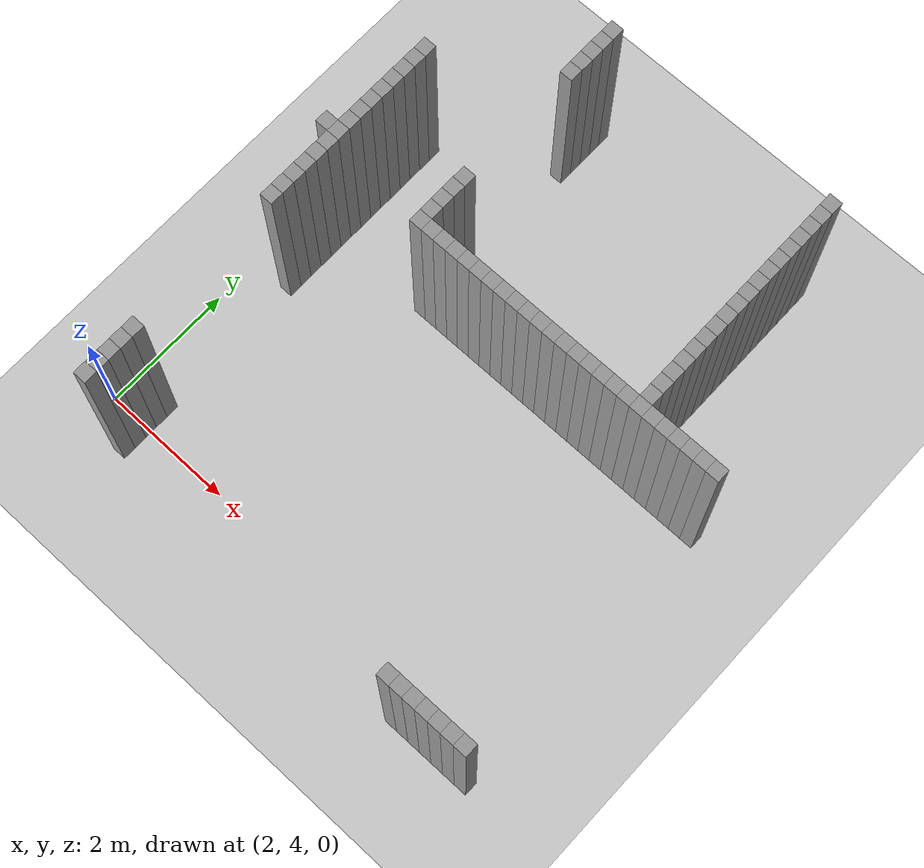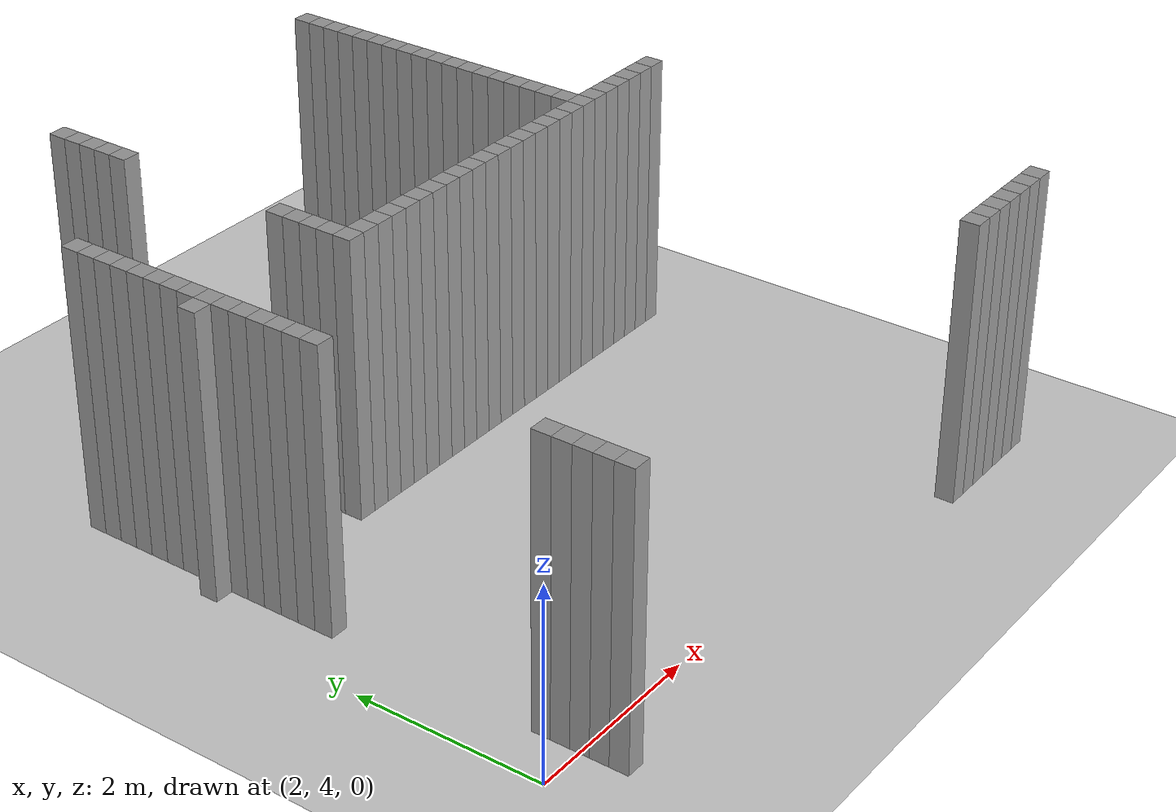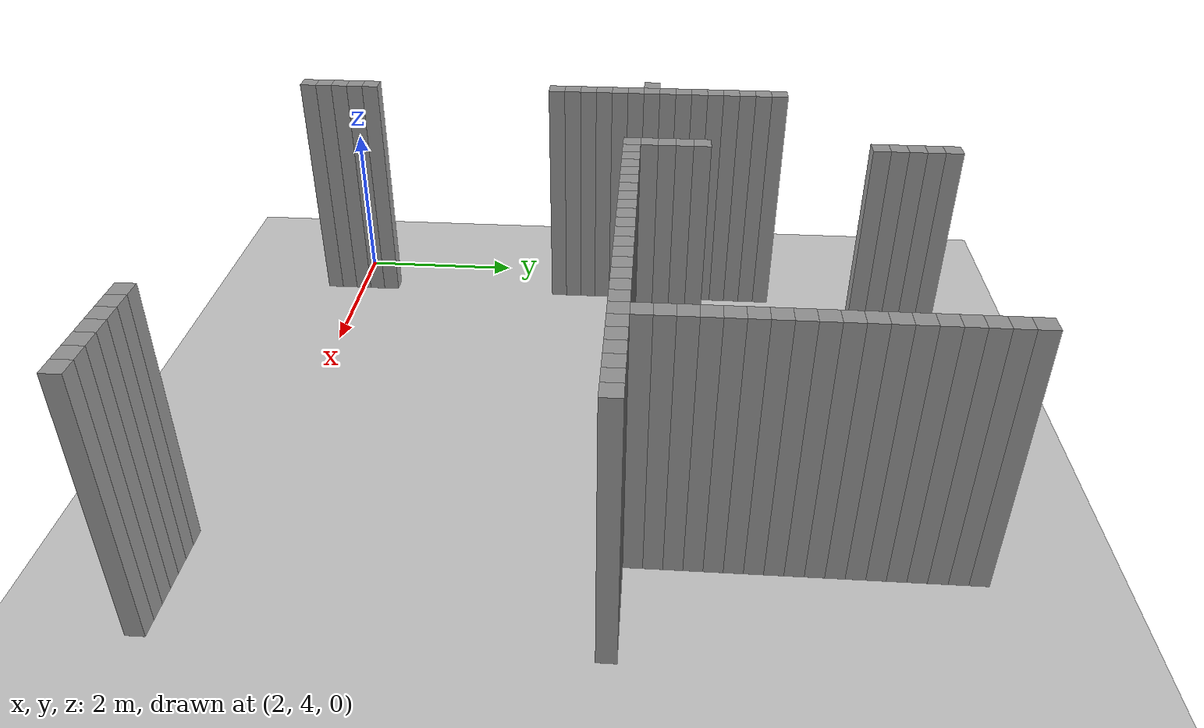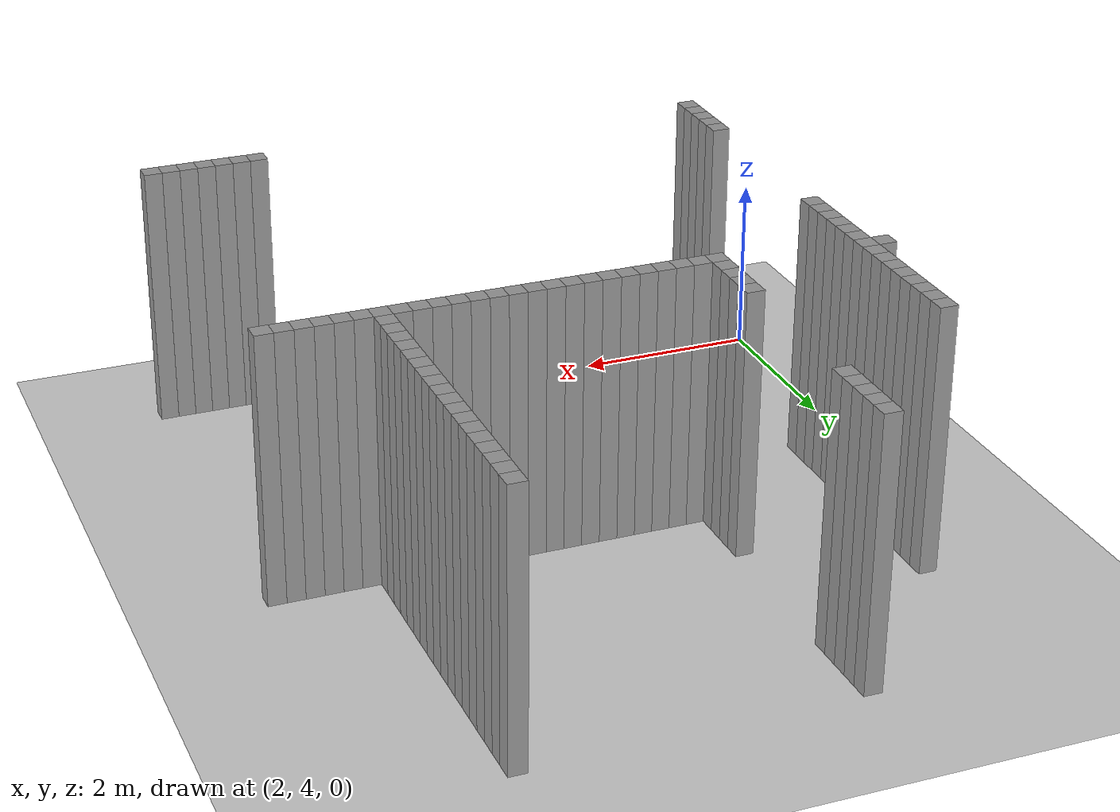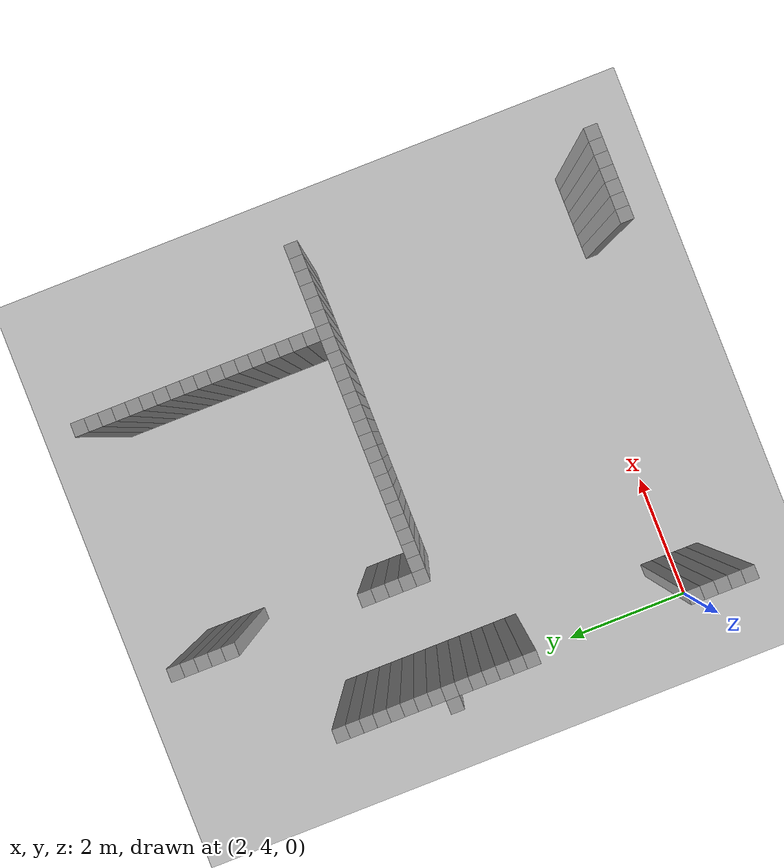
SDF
<sdf version="1.7">
 <world name="default">
  <model name="ground_plane">
   <static>1</static>
   <link name="link">
    <collision name="collision">
     <geometry><plane><normal>0 0 1</normal><size>100 100</size></plane></geometry>
     <surface>
      <contact><collide_bitmask>65535</collide_bitmask></contact>
      <friction><ode><mu>100</mu><mu2>50</mu2></ode></friction>
     </surface>
    </collision>
    <visual name="visual">
     <cast_shadows>0</cast_shadows>
     <geometry><plane><normal>0 0 1</normal><size>100 100</size></plane></geometry>
     <material>
      <script><uri>file://media/materials/scripts/gazebo.material</uri><name>Gazebo/Grey</name></script>
     </material>
    </visual>
   </link>
  </model>
  <model name="05222">
   <pose>-1 -1 0 0 -0 0</pose>
   <link name="Wall_265">
    <collision name="Wall_265_Collision">
     <geometry><box><size>0.2 0.2 3</size></box></geometry>
     <pose>0 0 1.5 0 -0 0</pose>
    </collision>
    <visual name="Wall_265_Visual">
     <pose>0 0 1.5 0 -0 0</pose>
     <geometry><box><size>0.2 0.2 3</size></box></geometry>
     <material>
      <script><uri>file://media/materials/scripts/gazebo.material</uri><name>Gazebo/Grey</name></script>
      <ambient>1 1 1 1</ambient>
     </material>
     <meta><layer>0</layer></meta>
    </visual>
    <pose>8.8 4.4 0 0 -0 0</pose>
   </link>
   <link name="Wall_266">
    <collision name="Wall_266_Collision">
     <geometry><box><size>0.2 0.2 3</size></box></geometry>
     <pose>0 0 1.5 0 -0 0</pose>
    </collision>
    <visual name="Wall_266_Visual">
     <pose>0 0 1.5 0 -0 0</pose>
     <geometry><box><size>0.2 0.2 3</size></box></geometry>
     <material>
      <script><uri>file://media/materials/scripts/gazebo.material</uri><name>Gazebo/Grey</name></script>
      <ambient>1 1 1 1</ambient>
     </material>
     <meta><layer>0</layer></meta>
    </visual>
    <pose>9.0 4.4 0 0 -0 0</pose>
   </link>
   <link name="Wall_267">
    <collision name="Wall_267_Collision">
     <geometry><box><size>0.2 0.2 3</size></box></geometry>
     <pose>0 0 1.5 0 -0 0</pose>
    </collision>
    <visual name="Wall_267_Visual">
     <pose>0 0 1.5 0 -0 0</pose>
     <geometry><box><size>0.2 0.2 3</size></box></geometry>
     <material>
      <script><uri>file://media/materials/scripts/gazebo.material</uri><name>Gazebo/Grey</name></script>
      <ambient>1 1 1 1</ambient>
     </material>
     <meta><layer>0</layer></meta>
    </visual>
    <pose>9.200000000000001 4.4 0 0 -0 0</pose>
   </link>
   <link name="Wall_268">
    <collision name="Wall_268_Collision">
     <geometry><box><size>0.2 0.2 3</size></box></geometry>
     <pose>0 0 1.5 0 -0 0</pose>
    </collision>
    <visual name="Wall_268_Visual">
     <pose>0 0 1.5 0 -0 0</pose>
     <geometry><box><size>0.2 0.2 3</size></box></geometry>
     <material>
      <script><uri>file://media/materials/scripts/gazebo.material</uri><name>Gazebo/Grey</name></script>
      <ambient>1 1 1 1</ambient>
     </material>
     <meta><layer>0</layer></meta>
    </visual>
    <pose>9.4 4.4 0 0 -0 0</pose>
   </link>
   <link name="Wall_269">
    <collision name="Wall_269_Collision">
     <geometry><box><size>0.2 0.2 3</size></box></geometry>
     <pose>0 0 1.5 0 -0 0</pose>
    </collision>
    <visual name="Wall_269_Visual">
     <pose>0 0 1.5 0 -0 0</pose>
     <geometry><box><size>0.2 0.2 3</size></box></geometry>
     <material>
      <script><uri>file://media/materials/scripts/gazebo.material</uri><name>Gazebo/Grey</name></script>
      <ambient>1 1 1 1</ambient>
     </material>
     <meta><layer>0</layer></meta>
    </visual>
    <pose>9.600000000000001 4.4 0 0 -0 0</pose>
   </link>
   <link name="Wall_270">
    <collision name="Wall_270_Collision">
     <geometry><box><size>0.2 0.2 3</size></box></geometry>
     <pose>0 0 1.5 0 -0 0</pose>
    </collision>
    <visual name="Wall_270_Visual">
     <pose>0 0 1.5 0 -0 0</pose>
     <geometry><box><size>0.2 0.2 3</size></box></geometry>
     <material>
      <script><uri>file://media/materials/scripts/gazebo.material</uri><name>Gazebo/Grey</name></script>
      <ambient>1 1 1 1</ambient>
     </material>
     <meta><layer>0</layer></meta>
    </visual>
    <pose>9.8 4.4 0 0 -0 0</pose>
   </link>
   <link name="Wall_271">
    <collision name="Wall_271_Collision">
     <geometry><box><size>0.2 0.2 3</size></box></geometry>
     <pose>0 0 1.5 0 -0 0</pose>
    </collision>
    <visual name="Wall_271_Visual">
     <pose>0 0 1.5 0 -0 0</pose>
     <geometry><box><size>0.2 0.2 3</size></box></geometry>
     <material>
      <script><uri>file://media/materials/scripts/gazebo.material</uri><name>Gazebo/Grey</name></script>
      <ambient>1 1 1 1</ambient>
     </material>
     <meta><layer>0</layer></meta>
    </visual>
    <pose>10.0 4.4 0 0 -0 0</pose>
   </link>
   <link name="Wall_287">
    <collision name="Wall_287_Collision">
     <geometry><box><size>0.2 0.2 3</size></box></geometry>
     <pose>0 0 1.5 0 -0 0</pose>
    </collision>
    <visual name="Wall_287_Visual">
     <pose>0 0 1.5 0 -0 0</pose>
     <geometry><box><size>0.2 0.2 3</size></box></geometry>
     <material>
      <script><uri>file://media/materials/scripts/gazebo.material</uri><name>Gazebo/Grey</name></script>
      <ambient>1 1 1 1</ambient>
     </material>
     <meta><layer>0</layer></meta>
    </visual>
    <pose>3.6 4.6000000000000005 0 0 -0 0</pose>
   </link>
   <link name="Wall_290">
    <collision name="Wall_290_Collision">
     <geometry><box><size>0.2 0.2 3</size></box></geometry>
     <pose>0 0 1.5 0 -0 0</pose>
    </collision>
    <visual name="Wall_290_Visual">
     <pose>0 0 1.5 0 -0 0</pose>
     <geometry><box><size>0.2 0.2 3</size></box></geometry>
     <material>
      <script><uri>file://media/materials/scripts/gazebo.material</uri><name>Gazebo/Grey</name></script>
      <ambient>1 1 1 1</ambient>
     </material>
     <meta><layer>0</layer></meta>
    </visual>
    <pose>3.6 4.800000000000001 0 0 -0 0</pose>
   </link>
   <link name="Wall_293">
    <collision name="Wall_293_Collision">
     <geometry><box><size>0.2 0.2 3</size></box></geometry>
     <pose>0 0 1.5 0 -0 0</pose>
    </collision>
    <visual name="Wall_293_Visual">
     <pose>0 0 1.5 0 -0 0</pose>
     <geometry><box><size>0.2 0.2 3</size></box></geometry>
     <material>
      <script><uri>file://media/materials/scripts/gazebo.material</uri><name>Gazebo/Grey</name></script>
      <ambient>1 1 1 1</ambient>
     </material>
     <meta><layer>0</layer></meta>
    </visual>
    <pose>3.6 5.0 0 0 -0 0</pose>
   </link>
   <link name="Wall_296">
    <collision name="Wall_296_Collision">
     <geometry><box><size>0.2 0.2 3</size></box></geometry>
     <pose>0 0 1.5 0 -0 0</pose>
    </collision>
    <visual name="Wall_296_Visual">
     <pose>0 0 1.5 0 -0 0</pose>
     <geometry><box><size>0.2 0.2 3</size></box></geometry>
     <material>
      <script><uri>file://media/materials/scripts/gazebo.material</uri><name>Gazebo/Grey</name></script>
      <ambient>1 1 1 1</ambient>
     </material>
     <meta><layer>0</layer></meta>
    </visual>
    <pose>3.6 5.2 0 0 -0 0</pose>
   </link>
   <link name="Wall_299">
    <collision name="Wall_299_Collision">
     <geometry><box><size>0.2 0.2 3</size></box></geometry>
     <pose>0 0 1.5 0 -0 0</pose>
    </collision>
    <visual name="Wall_299_Visual">
     <pose>0 0 1.5 0 -0 0</pose>
     <geometry><box><size>0.2 0.2 3</size></box></geometry>
     <material>
      <script><uri>file://media/materials/scripts/gazebo.material</uri><name>Gazebo/Grey</name></script>
      <ambient>1 1 1 1</ambient>
     </material>
     <meta><layer>0</layer></meta>
    </visual>
    <pose>3.6 5.4 0 0 -0 0</pose>
   </link>
   <link name="Wall_358">
    <collision name="Wall_358_Collision">
     <geometry><box><size>0.2 0.2 3</size></box></geometry>
     <pose>0 0 1.5 0 -0 0</pose>
    </collision>
    <visual name="Wall_358_Visual">
     <pose>0 0 1.5 0 -0 0</pose>
     <geometry><box><size>0.2 0.2 3</size></box></geometry>
     <material>
      <script><uri>file://media/materials/scripts/gazebo.material</uri><name>Gazebo/Grey</name></script>
      <ambient>1 1 1 1</ambient>
     </material>
     <meta><layer>0</layer></meta>
    </visual>
    <pose>3.6 7.800000000000001 0 0 -0 0</pose>
   </link>
   <link name="Wall_362">
    <collision name="Wall_362_Collision">
     <geometry><box><size>0.2 0.2 3</size></box></geometry>
     <pose>0 0 1.5 0 -0 0</pose>
    </collision>
    <visual name="Wall_362_Visual">
     <pose>0 0 1.5 0 -0 0</pose>
     <geometry><box><size>0.2 0.2 3</size></box></geometry>
     <material>
      <script><uri>file://media/materials/scripts/gazebo.material</uri><name>Gazebo/Grey</name></script>
      <ambient>1 1 1 1</ambient>
     </material>
     <meta><layer>0</layer></meta>
    </visual>
    <pose>3.6 8.0 0 0 -0 0</pose>
   </link>
   <link name="Wall_366">
    <collision name="Wall_366_Collision">
     <geometry><box><size>0.2 0.2 3</size></box></geometry>
     <pose>0 0 1.5 0 -0 0</pose>
    </collision>
    <visual name="Wall_366_Visual">
     <pose>0 0 1.5 0 -0 0</pose>
     <geometry><box><size>0.2 0.2 3</size></box></geometry>
     <material>
      <script><uri>file://media/materials/scripts/gazebo.material</uri><name>Gazebo/Grey</name></script>
      <ambient>1 1 1 1</ambient>
     </material>
     <meta><layer>0</layer></meta>
    </visual>
    <pose>3.6 8.200000000000001 0 0 -0 0</pose>
   </link>
   <link name="Wall_370">
    <collision name="Wall_370_Collision">
     <geometry><box><size>0.2 0.2 3</size></box></geometry>
     <pose>0 0 1.5 0 -0 0</pose>
    </collision>
    <visual name="Wall_370_Visual">
     <pose>0 0 1.5 0 -0 0</pose>
     <geometry><box><size>0.2 0.2 3</size></box></geometry>
     <material>
      <script><uri>file://media/materials/scripts/gazebo.material</uri><name>Gazebo/Grey</name></script>
      <ambient>1 1 1 1</ambient>
     </material>
     <meta><layer>0</layer></meta>
    </visual>
    <pose>3.6 8.4 0 0 -0 0</pose>
   </link>
   <link name="Wall_374">
    <collision name="Wall_374_Collision">
     <geometry><box><size>0.2 0.2 3</size></box></geometry>
     <pose>0 0 1.5 0 -0 0</pose>
    </collision>
    <visual name="Wall_374_Visual">
     <pose>0 0 1.5 0 -0 0</pose>
     <geometry><box><size>0.2 0.2 3</size></box></geometry>
     <material>
      <script><uri>file://media/materials/scripts/gazebo.material</uri><name>Gazebo/Grey</name></script>
      <ambient>1 1 1 1</ambient>
     </material>
     <meta><layer>0</layer></meta>
    </visual>
    <pose>3.6 8.6 0 0 -0 0</pose>
   </link>
   <link name="Wall_378">
    <collision name="Wall_378_Collision">
     <geometry><box><size>0.2 0.2 3</size></box></geometry>
     <pose>0 0 1.5 0 -0 0</pose>
    </collision>
    <visual name="Wall_378_Visual">
     <pose>0 0 1.5 0 -0 0</pose>
     <geometry><box><size>0.2 0.2 3</size></box></geometry>
     <material>
      <script><uri>file://media/materials/scripts/gazebo.material</uri><name>Gazebo/Grey</name></script>
      <ambient>1 1 1 1</ambient>
     </material>
     <meta><layer>0</layer></meta>
    </visual>
    <pose>3.6 8.8 0 0 -0 0</pose>
   </link>
   <link name="Wall_379">
    <collision name="Wall_379_Collision">
     <geometry><box><size>0.2 0.2 3</size></box></geometry>
     <pose>0 0 1.5 0 -0 0</pose>
    </collision>
    <visual name="Wall_379_Visual">
     <pose>0 0 1.5 0 -0 0</pose>
     <geometry><box><size>0.2 0.2 3</size></box></geometry>
     <material>
      <script><uri>file://media/materials/scripts/gazebo.material</uri><name>Gazebo/Grey</name></script>
      <ambient>1 1 1 1</ambient>
     </material>
     <meta><layer>0</layer></meta>
    </visual>
    <pose>5.2 8.8 0 0 -0 0</pose>
   </link>
   <link name="Wall_380">
    <collision name="Wall_380_Collision">
     <geometry><box><size>0.2 0.2 3</size></box></geometry>
     <pose>0 0 1.5 0 -0 0</pose>
    </collision>
    <visual name="Wall_380_Visual">
     <pose>0 0 1.5 0 -0 0</pose>
     <geometry><box><size>0.2 0.2 3</size></box></geometry>
     <material>
      <script><uri>file://media/materials/scripts/gazebo.material</uri><name>Gazebo/Grey</name></script>
      <ambient>1 1 1 1</ambient>
     </material>
     <meta><layer>0</layer></meta>
    </visual>
    <pose>5.4 8.8 0 0 -0 0</pose>
   </link>
   <link name="Wall_381">
    <collision name="Wall_381_Collision">
     <geometry><box><size>0.2 0.2 3</size></box></geometry>
     <pose>0 0 1.5 0 -0 0</pose>
    </collision>
    <visual name="Wall_381_Visual">
     <pose>0 0 1.5 0 -0 0</pose>
     <geometry><box><size>0.2 0.2 3</size></box></geometry>
     <material>
      <script><uri>file://media/materials/scripts/gazebo.material</uri><name>Gazebo/Grey</name></script>
      <ambient>1 1 1 1</ambient>
     </material>
     <meta><layer>0</layer></meta>
    </visual>
    <pose>5.6000000000000005 8.8 0 0 -0 0</pose>
   </link>
   <link name="Wall_382">
    <collision name="Wall_382_Collision">
     <geometry><box><size>0.2 0.2 3</size></box></geometry>
     <pose>0 0 1.5 0 -0 0</pose>
    </collision>
    <visual name="Wall_382_Visual">
     <pose>0 0 1.5 0 -0 0</pose>
     <geometry><box><size>0.2 0.2 3</size></box></geometry>
     <material>
      <script><uri>file://media/materials/scripts/gazebo.material</uri><name>Gazebo/Grey</name></script>
      <ambient>1 1 1 1</ambient>
     </material>
     <meta><layer>0</layer></meta>
    </visual>
    <pose>5.800000000000001 8.8 0 0 -0 0</pose>
   </link>
   <link name="Wall_383">
    <collision name="Wall_383_Collision">
     <geometry><box><size>0.2 0.2 3</size></box></geometry>
     <pose>0 0 1.5 0 -0 0</pose>
    </collision>
    <visual name="Wall_383_Visual">
     <pose>0 0 1.5 0 -0 0</pose>
     <geometry><box><size>0.2 0.2 3</size></box></geometry>
     <material>
      <script><uri>file://media/materials/scripts/gazebo.material</uri><name>Gazebo/Grey</name></script>
      <ambient>1 1 1 1</ambient>
     </material>
     <meta><layer>0</layer></meta>
    </visual>
    <pose>6.0 8.8 0 0 -0 0</pose>
   </link>
   <link name="Wall_384">
    <collision name="Wall_384_Collision">
     <geometry><box><size>0.2 0.2 3</size></box></geometry>
     <pose>0 0 1.5 0 -0 0</pose>
    </collision>
    <visual name="Wall_384_Visual">
     <pose>0 0 1.5 0 -0 0</pose>
     <geometry><box><size>0.2 0.2 3</size></box></geometry>
     <material>
      <script><uri>file://media/materials/scripts/gazebo.material</uri><name>Gazebo/Grey</name></script>
      <ambient>1 1 1 1</ambient>
     </material>
     <meta><layer>0</layer></meta>
    </visual>
    <pose>6.2 8.8 0 0 -0 0</pose>
   </link>
   <link name="Wall_385">
    <collision name="Wall_385_Collision">
     <geometry><box><size>0.2 0.2 3</size></box></geometry>
     <pose>0 0 1.5 0 -0 0</pose>
    </collision>
    <visual name="Wall_385_Visual">
     <pose>0 0 1.5 0 -0 0</pose>
     <geometry><box><size>0.2 0.2 3</size></box></geometry>
     <material>
      <script><uri>file://media/materials/scripts/gazebo.material</uri><name>Gazebo/Grey</name></script>
      <ambient>1 1 1 1</ambient>
     </material>
     <meta><layer>0</layer></meta>
    </visual>
    <pose>6.4 8.8 0 0 -0 0</pose>
   </link>
   <link name="Wall_386">
    <collision name="Wall_386_Collision">
     <geometry><box><size>0.2 0.2 3</size></box></geometry>
     <pose>0 0 1.5 0 -0 0</pose>
    </collision>
    <visual name="Wall_386_Visual">
     <pose>0 0 1.5 0 -0 0</pose>
     <geometry><box><size>0.2 0.2 3</size></box></geometry>
     <material>
      <script><uri>file://media/materials/scripts/gazebo.material</uri><name>Gazebo/Grey</name></script>
      <ambient>1 1 1 1</ambient>
     </material>
     <meta><layer>0</layer></meta>
    </visual>
    <pose>6.6000000000000005 8.8 0 0 -0 0</pose>
   </link>
   <link name="Wall_387">
    <collision name="Wall_387_Collision">
     <geometry><box><size>0.2 0.2 3</size></box></geometry>
     <pose>0 0 1.5 0 -0 0</pose>
    </collision>
    <visual name="Wall_387_Visual">
     <pose>0 0 1.5 0 -0 0</pose>
     <geometry><box><size>0.2 0.2 3</size></box></geometry>
     <material>
      <script><uri>file://media/materials/scripts/gazebo.material</uri><name>Gazebo/Grey</name></script>
      <ambient>1 1 1 1</ambient>
     </material>
     <meta><layer>0</layer></meta>
    </visual>
    <pose>6.800000000000001 8.8 0 0 -0 0</pose>
   </link>
   <link name="Wall_388">
    <collision name="Wall_388_Collision">
     <geometry><box><size>0.2 0.2 3</size></box></geometry>
     <pose>0 0 1.5 0 -0 0</pose>
    </collision>
    <visual name="Wall_388_Visual">
     <pose>0 0 1.5 0 -0 0</pose>
     <geometry><box><size>0.2 0.2 3</size></box></geometry>
     <material>
      <script><uri>file://media/materials/scripts/gazebo.material</uri><name>Gazebo/Grey</name></script>
      <ambient>1 1 1 1</ambient>
     </material>
     <meta><layer>0</layer></meta>
    </visual>
    <pose>7.0 8.8 0 0 -0 0</pose>
   </link>
   <link name="Wall_389">
    <collision name="Wall_389_Collision">
     <geometry><box><size>0.2 0.2 3</size></box></geometry>
     <pose>0 0 1.5 0 -0 0</pose>
    </collision>
    <visual name="Wall_389_Visual">
     <pose>0 0 1.5 0 -0 0</pose>
     <geometry><box><size>0.2 0.2 3</size></box></geometry>
     <material>
      <script><uri>file://media/materials/scripts/gazebo.material</uri><name>Gazebo/Grey</name></script>
      <ambient>1 1 1 1</ambient>
     </material>
     <meta><layer>0</layer></meta>
    </visual>
    <pose>7.2 8.8 0 0 -0 0</pose>
   </link>
   <link name="Wall_390">
    <collision name="Wall_390_Collision">
     <geometry><box><size>0.2 0.2 3</size></box></geometry>
     <pose>0 0 1.5 0 -0 0</pose>
    </collision>
    <visual name="Wall_390_Visual">
     <pose>0 0 1.5 0 -0 0</pose>
     <geometry><box><size>0.2 0.2 3</size></box></geometry>
     <material>
      <script><uri>file://media/materials/scripts/gazebo.material</uri><name>Gazebo/Grey</name></script>
      <ambient>1 1 1 1</ambient>
     </material>
     <meta><layer>0</layer></meta>
    </visual>
    <pose>7.4 8.8 0 0 -0 0</pose>
   </link>
   <link name="Wall_391">
    <collision name="Wall_391_Collision">
     <geometry><box><size>0.2 0.2 3</size></box></geometry>
     <pose>0 0 1.5 0 -0 0</pose>
    </collision>
    <visual name="Wall_391_Visual">
     <pose>0 0 1.5 0 -0 0</pose>
     <geometry><box><size>0.2 0.2 3</size></box></geometry>
     <material>
      <script><uri>file://media/materials/scripts/gazebo.material</uri><name>Gazebo/Grey</name></script>
      <ambient>1 1 1 1</ambient>
     </material>
     <meta><layer>0</layer></meta>
    </visual>
    <pose>7.6000000000000005 8.8 0 0 -0 0</pose>
   </link>
   <link name="Wall_392">
    <collision name="Wall_392_Collision">
     <geometry><box><size>0.2 0.2 3</size></box></geometry>
     <pose>0 0 1.5 0 -0 0</pose>
    </collision>
    <visual name="Wall_392_Visual">
     <pose>0 0 1.5 0 -0 0</pose>
     <geometry><box><size>0.2 0.2 3</size></box></geometry>
     <material>
      <script><uri>file://media/materials/scripts/gazebo.material</uri><name>Gazebo/Grey</name></script>
      <ambient>1 1 1 1</ambient>
     </material>
     <meta><layer>0</layer></meta>
    </visual>
    <pose>7.800000000000001 8.8 0 0 -0 0</pose>
   </link>
   <link name="Wall_393">
    <collision name="Wall_393_Collision">
     <geometry><box><size>0.2 0.2 3</size></box></geometry>
     <pose>0 0 1.5 0 -0 0</pose>
    </collision>
    <visual name="Wall_393_Visual">
     <pose>0 0 1.5 0 -0 0</pose>
     <geometry><box><size>0.2 0.2 3</size></box></geometry>
     <material>
      <script><uri>file://media/materials/scripts/gazebo.material</uri><name>Gazebo/Grey</name></script>
      <ambient>1 1 1 1</ambient>
     </material>
     <meta><layer>0</layer></meta>
    </visual>
    <pose>8.0 8.8 0 0 -0 0</pose>
   </link>
   <link name="Wall_394">
    <collision name="Wall_394_Collision">
     <geometry><box><size>0.2 0.2 3</size></box></geometry>
     <pose>0 0 1.5 0 -0 0</pose>
    </collision>
    <visual name="Wall_394_Visual">
     <pose>0 0 1.5 0 -0 0</pose>
     <geometry><box><size>0.2 0.2 3</size></box></geometry>
     <material>
      <script><uri>file://media/materials/scripts/gazebo.material</uri><name>Gazebo/Grey</name></script>
      <ambient>1 1 1 1</ambient>
     </material>
     <meta><layer>0</layer></meta>
    </visual>
    <pose>8.200000000000001 8.8 0 0 -0 0</pose>
   </link>
   <link name="Wall_395">
    <collision name="Wall_395_Collision">
     <geometry><box><size>0.2 0.2 3</size></box></geometry>
     <pose>0 0 1.5 0 -0 0</pose>
    </collision>
    <visual name="Wall_395_Visual">
     <pose>0 0 1.5 0 -0 0</pose>
     <geometry><box><size>0.2 0.2 3</size></box></geometry>
     <material>
      <script><uri>file://media/materials/scripts/gazebo.material</uri><name>Gazebo/Grey</name></script>
      <ambient>1 1 1 1</ambient>
     </material>
     <meta><layer>0</layer></meta>
    </visual>
    <pose>8.4 8.8 0 0 -0 0</pose>
   </link>
   <link name="Wall_396">
    <collision name="Wall_396_Collision">
     <geometry><box><size>0.2 0.2 3</size></box></geometry>
     <pose>0 0 1.5 0 -0 0</pose>
    </collision>
    <visual name="Wall_396_Visual">
     <pose>0 0 1.5 0 -0 0</pose>
     <geometry><box><size>0.2 0.2 3</size></box></geometry>
     <material>
      <script><uri>file://media/materials/scripts/gazebo.material</uri><name>Gazebo/Grey</name></script>
      <ambient>1 1 1 1</ambient>
     </material>
     <meta><layer>0</layer></meta>
    </visual>
    <pose>8.6 8.8 0 0 -0 0</pose>
   </link>
   <link name="Wall_397">
    <collision name="Wall_397_Collision">
     <geometry><box><size>0.2 0.2 3</size></box></geometry>
     <pose>0 0 1.5 0 -0 0</pose>
    </collision>
    <visual name="Wall_397_Visual">
     <pose>0 0 1.5 0 -0 0</pose>
     <geometry><box><size>0.2 0.2 3</size></box></geometry>
     <material>
      <script><uri>file://media/materials/scripts/gazebo.material</uri><name>Gazebo/Grey</name></script>
      <ambient>1 1 1 1</ambient>
     </material>
     <meta><layer>0</layer></meta>
    </visual>
    <pose>8.8 8.8 0 0 -0 0</pose>
   </link>
   <link name="Wall_398">
    <collision name="Wall_398_Collision">
     <geometry><box><size>0.2 0.2 3</size></box></geometry>
     <pose>0 0 1.5 0 -0 0</pose>
    </collision>
    <visual name="Wall_398_Visual">
     <pose>0 0 1.5 0 -0 0</pose>
     <geometry><box><size>0.2 0.2 3</size></box></geometry>
     <material>
      <script><uri>file://media/materials/scripts/gazebo.material</uri><name>Gazebo/Grey</name></script>
      <ambient>1 1 1 1</ambient>
     </material>
     <meta><layer>0</layer></meta>
    </visual>
    <pose>9.0 8.8 0 0 -0 0</pose>
   </link>
   <link name="Wall_399">
    <collision name="Wall_399_Collision">
     <geometry><box><size>0.2 0.2 3</size></box></geometry>
     <pose>0 0 1.5 0 -0 0</pose>
    </collision>
    <visual name="Wall_399_Visual">
     <pose>0 0 1.5 0 -0 0</pose>
     <geometry><box><size>0.2 0.2 3</size></box></geometry>
     <material>
      <script><uri>file://media/materials/scripts/gazebo.material</uri><name>Gazebo/Grey</name></script>
      <ambient>1 1 1 1</ambient>
     </material>
     <meta><layer>0</layer></meta>
    </visual>
    <pose>9.200000000000001 8.8 0 0 -0 0</pose>
   </link>
   <link name="Wall_400">
    <collision name="Wall_400_Collision">
     <geometry><box><size>0.2 0.2 3</size></box></geometry>
     <pose>0 0 1.5 0 -0 0</pose>
    </collision>
    <visual name="Wall_400_Visual">
     <pose>0 0 1.5 0 -0 0</pose>
     <geometry><box><size>0.2 0.2 3</size></box></geometry>
     <material>
      <script><uri>file://media/materials/scripts/gazebo.material</uri><name>Gazebo/Grey</name></script>
      <ambient>1 1 1 1</ambient>
     </material>
     <meta><layer>0</layer></meta>
    </visual>
    <pose>9.4 8.8 0 0 -0 0</pose>
   </link>
   <link name="Wall_401">
    <collision name="Wall_401_Collision">
     <geometry><box><size>0.2 0.2 3</size></box></geometry>
     <pose>0 0 1.5 0 -0 0</pose>
    </collision>
    <visual name="Wall_401_Visual">
     <pose>0 0 1.5 0 -0 0</pose>
     <geometry><box><size>0.2 0.2 3</size></box></geometry>
     <material>
      <script><uri>file://media/materials/scripts/gazebo.material</uri><name>Gazebo/Grey</name></script>
      <ambient>1 1 1 1</ambient>
     </material>
     <meta><layer>0</layer></meta>
    </visual>
    <pose>9.600000000000001 8.8 0 0 -0 0</pose>
   </link>
   <link name="Wall_402">
    <collision name="Wall_402_Collision">
     <geometry><box><size>0.2 0.2 3</size></box></geometry>
     <pose>0 0 1.5 0 -0 0</pose>
    </collision>
    <visual name="Wall_402_Visual">
     <pose>0 0 1.5 0 -0 0</pose>
     <geometry><box><size>0.2 0.2 3</size></box></geometry>
     <material>
      <script><uri>file://media/materials/scripts/gazebo.material</uri><name>Gazebo/Grey</name></script>
      <ambient>1 1 1 1</ambient>
     </material>
     <meta><layer>0</layer></meta>
    </visual>
    <pose>9.8 8.8 0 0 -0 0</pose>
   </link>
   <link name="Wall_403">
    <collision name="Wall_403_Collision">
     <geometry><box><size>0.2 0.2 3</size></box></geometry>
     <pose>0 0 1.5 0 -0 0</pose>
    </collision>
    <visual name="Wall_403_Visual">
     <pose>0 0 1.5 0 -0 0</pose>
     <geometry><box><size>0.2 0.2 3</size></box></geometry>
     <material>
      <script><uri>file://media/materials/scripts/gazebo.material</uri><name>Gazebo/Grey</name></script>
      <ambient>1 1 1 1</ambient>
     </material>
     <meta><layer>0</layer></meta>
    </visual>
    <pose>10.0 8.8 0 0 -0 0</pose>
   </link>
   <link name="Wall_437">
    <collision name="Wall_437_Collision">
     <geometry><box><size>0.2 0.2 3</size></box></geometry>
     <pose>0 0 1.5 0 -0 0</pose>
    </collision>
    <visual name="Wall_437_Visual">
     <pose>0 0 1.5 0 -0 0</pose>
     <geometry><box><size>0.2 0.2 3</size></box></geometry>
     <material>
      <script><uri>file://media/materials/scripts/gazebo.material</uri><name>Gazebo/Grey</name></script>
      <ambient>1 1 1 1</ambient>
     </material>
     <meta><layer>0</layer></meta>
    </visual>
    <pose>3.4000000000000004 9.0 0 0 -0 0</pose>
   </link>
   <link name="Wall_438">
    <collision name="Wall_438_Collision">
     <geometry><box><size>0.2 0.2 3</size></box></geometry>
     <pose>0 0 1.5 0 -0 0</pose>
    </collision>
    <visual name="Wall_438_Visual">
     <pose>0 0 1.5 0 -0 0</pose>
     <geometry><box><size>0.2 0.2 3</size></box></geometry>
     <material>
      <script><uri>file://media/materials/scripts/gazebo.material</uri><name>Gazebo/Grey</name></script>
      <ambient>1 1 1 1</ambient>
     </material>
     <meta><layer>0</layer></meta>
    </visual>
    <pose>3.6 9.0 0 0 -0 0</pose>
   </link>
   <link name="Wall_439">
    <collision name="Wall_439_Collision">
     <geometry><box><size>0.2 0.2 3</size></box></geometry>
     <pose>0 0 1.5 0 -0 0</pose>
    </collision>
    <visual name="Wall_439_Visual">
     <pose>0 0 1.5 0 -0 0</pose>
     <geometry><box><size>0.2 0.2 3</size></box></geometry>
     <material>
      <script><uri>file://media/materials/scripts/gazebo.material</uri><name>Gazebo/Grey</name></script>
      <ambient>1 1 1 1</ambient>
     </material>
     <meta><layer>0</layer></meta>
    </visual>
    <pose>5.2 9.0 0 0 -0 0</pose>
   </link>
   <link name="Wall_440">
    <collision name="Wall_440_Collision">
     <geometry><box><size>0.2 0.2 3</size></box></geometry>
     <pose>0 0 1.5 0 -0 0</pose>
    </collision>
    <visual name="Wall_440_Visual">
     <pose>0 0 1.5 0 -0 0</pose>
     <geometry><box><size>0.2 0.2 3</size></box></geometry>
     <material>
      <script><uri>file://media/materials/scripts/gazebo.material</uri><name>Gazebo/Grey</name></script>
      <ambient>1 1 1 1</ambient>
     </material>
     <meta><layer>0</layer></meta>
    </visual>
    <pose>8.8 9.0 0 0 -0 0</pose>
   </link>
   <link name="Wall_444">
    <collision name="Wall_444_Collision">
     <geometry><box><size>0.2 0.2 3</size></box></geometry>
     <pose>0 0 1.5 0 -0 0</pose>
    </collision>
    <visual name="Wall_444_Visual">
     <pose>0 0 1.5 0 -0 0</pose>
     <geometry><box><size>0.2 0.2 3</size></box></geometry>
     <material>
      <script><uri>file://media/materials/scripts/gazebo.material</uri><name>Gazebo/Grey</name></script>
      <ambient>1 1 1 1</ambient>
     </material>
     <meta><layer>0</layer></meta>
    </visual>
    <pose>3.6 9.200000000000001 0 0 -0 0</pose>
   </link>
   <link name="Wall_445">
    <collision name="Wall_445_Collision">
     <geometry><box><size>0.2 0.2 3</size></box></geometry>
     <pose>0 0 1.5 0 -0 0</pose>
    </collision>
    <visual name="Wall_445_Visual">
     <pose>0 0 1.5 0 -0 0</pose>
     <geometry><box><size>0.2 0.2 3</size></box></geometry>
     <material>
      <script><uri>file://media/materials/scripts/gazebo.material</uri><name>Gazebo/Grey</name></script>
      <ambient>1 1 1 1</ambient>
     </material>
     <meta><layer>0</layer></meta>
    </visual>
    <pose>5.2 9.200000000000001 0 0 -0 0</pose>
   </link>
   <link name="Wall_446">
    <collision name="Wall_446_Collision">
     <geometry><box><size>0.2 0.2 3</size></box></geometry>
     <pose>0 0 1.5 0 -0 0</pose>
    </collision>
    <visual name="Wall_446_Visual">
     <pose>0 0 1.5 0 -0 0</pose>
     <geometry><box><size>0.2 0.2 3</size></box></geometry>
     <material>
      <script><uri>file://media/materials/scripts/gazebo.material</uri><name>Gazebo/Grey</name></script>
      <ambient>1 1 1 1</ambient>
     </material>
     <meta><layer>0</layer></meta>
    </visual>
    <pose>8.8 9.200000000000001 0 0 -0 0</pose>
   </link>
   <link name="Wall_469">
    <collision name="Wall_469_Collision">
     <geometry><box><size>0.2 0.2 3</size></box></geometry>
     <pose>0 0 1.5 0 -0 0</pose>
    </collision>
    <visual name="Wall_469_Visual">
     <pose>0 0 1.5 0 -0 0</pose>
     <geometry><box><size>0.2 0.2 3</size></box></geometry>
     <material>
      <script><uri>file://media/materials/scripts/gazebo.material</uri><name>Gazebo/Grey</name></script>
      <ambient>1 1 1 1</ambient>
     </material>
     <meta><layer>0</layer></meta>
    </visual>
    <pose>3.6 9.4 0 0 -0 0</pose>
   </link>
   <link name="Wall_470">
    <collision name="Wall_470_Collision">
     <geometry><box><size>0.2 0.2 3</size></box></geometry>
     <pose>0 0 1.5 0 -0 0</pose>
    </collision>
    <visual name="Wall_470_Visual">
     <pose>0 0 1.5 0 -0 0</pose>
     <geometry><box><size>0.2 0.2 3</size></box></geometry>
     <material>
      <script><uri>file://media/materials/scripts/gazebo.material</uri><name>Gazebo/Grey</name></script>
      <ambient>1 1 1 1</ambient>
     </material>
     <meta><layer>0</layer></meta>
    </visual>
    <pose>5.2 9.4 0 0 -0 0</pose>
   </link>
   <link name="Wall_471">
    <collision name="Wall_471_Collision">
     <geometry><box><size>0.2 0.2 3</size></box></geometry>
     <pose>0 0 1.5 0 -0 0</pose>
    </collision>
    <visual name="Wall_471_Visual">
     <pose>0 0 1.5 0 -0 0</pose>
     <geometry><box><size>0.2 0.2 3</size></box></geometry>
     <material>
      <script><uri>file://media/materials/scripts/gazebo.material</uri><name>Gazebo/Grey</name></script>
      <ambient>1 1 1 1</ambient>
     </material>
     <meta><layer>0</layer></meta>
    </visual>
    <pose>8.8 9.4 0 0 -0 0</pose>
   </link>
   <link name="Wall_476">
    <collision name="Wall_476_Collision">
     <geometry><box><size>0.2 0.2 3</size></box></geometry>
     <pose>0 0 1.5 0 -0 0</pose>
    </collision>
    <visual name="Wall_476_Visual">
     <pose>0 0 1.5 0 -0 0</pose>
     <geometry><box><size>0.2 0.2 3</size></box></geometry>
     <material>
      <script><uri>file://media/materials/scripts/gazebo.material</uri><name>Gazebo/Grey</name></script>
      <ambient>1 1 1 1</ambient>
     </material>
     <meta><layer>0</layer></meta>
    </visual>
    <pose>3.6 9.600000000000001 0 0 -0 0</pose>
   </link>
   <link name="Wall_477">
    <collision name="Wall_477_Collision">
     <geometry><box><size>0.2 0.2 3</size></box></geometry>
     <pose>0 0 1.5 0 -0 0</pose>
    </collision>
    <visual name="Wall_477_Visual">
     <pose>0 0 1.5 0 -0 0</pose>
     <geometry><box><size>0.2 0.2 3</size></box></geometry>
     <material>
      <script><uri>file://media/materials/scripts/gazebo.material</uri><name>Gazebo/Grey</name></script>
      <ambient>1 1 1 1</ambient>
     </material>
     <meta><layer>0</layer></meta>
    </visual>
    <pose>5.2 9.600000000000001 0 0 -0 0</pose>
   </link>
   <link name="Wall_478">
    <collision name="Wall_478_Collision">
     <geometry><box><size>0.2 0.2 3</size></box></geometry>
     <pose>0 0 1.5 0 -0 0</pose>
    </collision>
    <visual name="Wall_478_Visual">
     <pose>0 0 1.5 0 -0 0</pose>
     <geometry><box><size>0.2 0.2 3</size></box></geometry>
     <material>
      <script><uri>file://media/materials/scripts/gazebo.material</uri><name>Gazebo/Grey</name></script>
      <ambient>1 1 1 1</ambient>
     </material>
     <meta><layer>0</layer></meta>
    </visual>
    <pose>8.8 9.600000000000001 0 0 -0 0</pose>
   </link>
   <link name="Wall_484">
    <collision name="Wall_484_Collision">
     <geometry><box><size>0.2 0.2 3</size></box></geometry>
     <pose>0 0 1.5 0 -0 0</pose>
    </collision>
    <visual name="Wall_484_Visual">
     <pose>0 0 1.5 0 -0 0</pose>
     <geometry><box><size>0.2 0.2 3</size></box></geometry>
     <material>
      <script><uri>file://media/materials/scripts/gazebo.material</uri><name>Gazebo/Grey</name></script>
      <ambient>1 1 1 1</ambient>
     </material>
     <meta><layer>0</layer></meta>
    </visual>
    <pose>3.6 9.8 0 0 -0 0</pose>
   </link>
   <link name="Wall_485">
    <collision name="Wall_485_Collision">
     <geometry><box><size>0.2 0.2 3</size></box></geometry>
     <pose>0 0 1.5 0 -0 0</pose>
    </collision>
    <visual name="Wall_485_Visual">
     <pose>0 0 1.5 0 -0 0</pose>
     <geometry><box><size>0.2 0.2 3</size></box></geometry>
     <material>
      <script><uri>file://media/materials/scripts/gazebo.material</uri><name>Gazebo/Grey</name></script>
      <ambient>1 1 1 1</ambient>
     </material>
     <meta><layer>0</layer></meta>
    </visual>
    <pose>8.8 9.8 0 0 -0 0</pose>
   </link>
   <link name="Wall_491">
    <collision name="Wall_491_Collision">
     <geometry><box><size>0.2 0.2 3</size></box></geometry>
     <pose>0 0 1.5 0 -0 0</pose>
    </collision>
    <visual name="Wall_491_Visual">
     <pose>0 0 1.5 0 -0 0</pose>
     <geometry><box><size>0.2 0.2 3</size></box></geometry>
     <material>
      <script><uri>file://media/materials/scripts/gazebo.material</uri><name>Gazebo/Grey</name></script>
      <ambient>1 1 1 1</ambient>
     </material>
     <meta><layer>0</layer></meta>
    </visual>
    <pose>3.6 10.0 0 0 -0 0</pose>
   </link>
   <link name="Wall_492">
    <collision name="Wall_492_Collision">
     <geometry><box><size>0.2 0.2 3</size></box></geometry>
     <pose>0 0 1.5 0 -0 0</pose>
    </collision>
    <visual name="Wall_492_Visual">
     <pose>0 0 1.5 0 -0 0</pose>
     <geometry><box><size>0.2 0.2 3</size></box></geometry>
     <material>
      <script><uri>file://media/materials/scripts/gazebo.material</uri><name>Gazebo/Grey</name></script>
      <ambient>1 1 1 1</ambient>
     </material>
     <meta><layer>0</layer></meta>
    </visual>
    <pose>8.8 10.0 0 0 -0 0</pose>
   </link>
   <link name="Wall_498">
    <collision name="Wall_498_Collision">
     <geometry><box><size>0.2 0.2 3</size></box></geometry>
     <pose>0 0 1.5 0 -0 0</pose>
    </collision>
    <visual name="Wall_498_Visual">
     <pose>0 0 1.5 0 -0 0</pose>
     <geometry><box><size>0.2 0.2 3</size></box></geometry>
     <material>
      <script><uri>file://media/materials/scripts/gazebo.material</uri><name>Gazebo/Grey</name></script>
      <ambient>1 1 1 1</ambient>
     </material>
     <meta><layer>0</layer></meta>
    </visual>
    <pose>3.6 10.200000000000001 0 0 -0 0</pose>
   </link>
   <link name="Wall_499">
    <collision name="Wall_499_Collision">
     <geometry><box><size>0.2 0.2 3</size></box></geometry>
     <pose>0 0 1.5 0 -0 0</pose>
    </collision>
    <visual name="Wall_499_Visual">
     <pose>0 0 1.5 0 -0 0</pose>
     <geometry><box><size>0.2 0.2 3</size></box></geometry>
     <material>
      <script><uri>file://media/materials/scripts/gazebo.material</uri><name>Gazebo/Grey</name></script>
      <ambient>1 1 1 1</ambient>
     </material>
     <meta><layer>0</layer></meta>
    </visual>
    <pose>8.8 10.200000000000001 0 0 -0 0</pose>
   </link>
   <link name="Wall_504">
    <collision name="Wall_504_Collision">
     <geometry><box><size>0.2 0.2 3</size></box></geometry>
     <pose>0 0 1.5 0 -0 0</pose>
    </collision>
    <visual name="Wall_504_Visual">
     <pose>0 0 1.5 0 -0 0</pose>
     <geometry><box><size>0.2 0.2 3</size></box></geometry>
     <material>
      <script><uri>file://media/materials/scripts/gazebo.material</uri><name>Gazebo/Grey</name></script>
      <ambient>1 1 1 1</ambient>
     </material>
     <meta><layer>0</layer></meta>
    </visual>
    <pose>3.6 10.4 0 0 -0 0</pose>
   </link>
   <link name="Wall_505">
    <collision name="Wall_505_Collision">
     <geometry><box><size>0.2 0.2 3</size></box></geometry>
     <pose>0 0 1.5 0 -0 0</pose>
    </collision>
    <visual name="Wall_505_Visual">
     <pose>0 0 1.5 0 -0 0</pose>
     <geometry><box><size>0.2 0.2 3</size></box></geometry>
     <material>
      <script><uri>file://media/materials/scripts/gazebo.material</uri><name>Gazebo/Grey</name></script>
      <ambient>1 1 1 1</ambient>
     </material>
     <meta><layer>0</layer></meta>
    </visual>
    <pose>8.8 10.4 0 0 -0 0</pose>
   </link>
   <link name="Wall_511">
    <collision name="Wall_511_Collision">
     <geometry><box><size>0.2 0.2 3</size></box></geometry>
     <pose>0 0 1.5 0 -0 0</pose>
    </collision>
    <visual name="Wall_511_Visual">
     <pose>0 0 1.5 0 -0 0</pose>
     <geometry><box><size>0.2 0.2 3</size></box></geometry>
     <material>
      <script><uri>file://media/materials/scripts/gazebo.material</uri><name>Gazebo/Grey</name></script>
      <ambient>1 1 1 1</ambient>
     </material>
     <meta><layer>0</layer></meta>
    </visual>
    <pose>3.6 10.600000000000001 0 0 -0 0</pose>
   </link>
   <link name="Wall_512">
    <collision name="Wall_512_Collision">
     <geometry><box><size>0.2 0.2 3</size></box></geometry>
     <pose>0 0 1.5 0 -0 0</pose>
    </collision>
    <visual name="Wall_512_Visual">
     <pose>0 0 1.5 0 -0 0</pose>
     <geometry><box><size>0.2 0.2 3</size></box></geometry>
     <material>
      <script><uri>file://media/materials/scripts/gazebo.material</uri><name>Gazebo/Grey</name></script>
      <ambient>1 1 1 1</ambient>
     </material>
     <meta><layer>0</layer></meta>
    </visual>
    <pose>8.8 10.600000000000001 0 0 -0 0</pose>
   </link>
   <link name="Wall_518">
    <collision name="Wall_518_Collision">
     <geometry><box><size>0.2 0.2 3</size></box></geometry>
     <pose>0 0 1.5 0 -0 0</pose>
    </collision>
    <visual name="Wall_518_Visual">
     <pose>0 0 1.5 0 -0 0</pose>
     <geometry><box><size>0.2 0.2 3</size></box></geometry>
     <material>
      <script><uri>file://media/materials/scripts/gazebo.material</uri><name>Gazebo/Grey</name></script>
      <ambient>1 1 1 1</ambient>
     </material>
     <meta><layer>0</layer></meta>
    </visual>
    <pose>8.8 10.8 0 0 -0 0</pose>
   </link>
   <link name="Wall_523">
    <collision name="Wall_523_Collision">
     <geometry><box><size>0.2 0.2 3</size></box></geometry>
     <pose>0 0 1.5 0 -0 0</pose>
    </collision>
    <visual name="Wall_523_Visual">
     <pose>0 0 1.5 0 -0 0</pose>
     <geometry><box><size>0.2 0.2 3</size></box></geometry>
     <material>
      <script><uri>file://media/materials/scripts/gazebo.material</uri><name>Gazebo/Grey</name></script>
      <ambient>1 1 1 1</ambient>
     </material>
     <meta><layer>0</layer></meta>
    </visual>
    <pose>8.8 11.0 0 0 -0 0</pose>
   </link>
   <link name="Wall_528">
    <collision name="Wall_528_Collision">
     <geometry><box><size>0.2 0.2 3</size></box></geometry>
     <pose>0 0 1.5 0 -0 0</pose>
    </collision>
    <visual name="Wall_528_Visual">
     <pose>0 0 1.5 0 -0 0</pose>
     <geometry><box><size>0.2 0.2 3</size></box></geometry>
     <material>
      <script><uri>file://media/materials/scripts/gazebo.material</uri><name>Gazebo/Grey</name></script>
      <ambient>1 1 1 1</ambient>
     </material>
     <meta><layer>0</layer></meta>
    </visual>
    <pose>8.8 11.200000000000001 0 0 -0 0</pose>
   </link>
   <link name="Wall_533">
    <collision name="Wall_533_Collision">
     <geometry><box><size>0.2 0.2 3</size></box></geometry>
     <pose>0 0 1.5 0 -0 0</pose>
    </collision>
    <visual name="Wall_533_Visual">
     <pose>0 0 1.5 0 -0 0</pose>
     <geometry><box><size>0.2 0.2 3</size></box></geometry>
     <material>
      <script><uri>file://media/materials/scripts/gazebo.material</uri><name>Gazebo/Grey</name></script>
      <ambient>1 1 1 1</ambient>
     </material>
     <meta><layer>0</layer></meta>
    </visual>
    <pose>8.8 11.4 0 0 -0 0</pose>
   </link>
   <link name="Wall_538">
    <collision name="Wall_538_Collision">
     <geometry><box><size>0.2 0.2 3</size></box></geometry>
     <pose>0 0 1.5 0 -0 0</pose>
    </collision>
    <visual name="Wall_538_Visual">
     <pose>0 0 1.5 0 -0 0</pose>
     <geometry><box><size>0.2 0.2 3</size></box></geometry>
     <material>
      <script><uri>file://media/materials/scripts/gazebo.material</uri><name>Gazebo/Grey</name></script>
      <ambient>1 1 1 1</ambient>
     </material>
     <meta><layer>0</layer></meta>
    </visual>
    <pose>5.2 11.600000000000001 0 0 -0 0</pose>
   </link>
   <link name="Wall_539">
    <collision name="Wall_539_Collision">
     <geometry><box><size>0.2 0.2 3</size></box></geometry>
     <pose>0 0 1.5 0 -0 0</pose>
    </collision>
    <visual name="Wall_539_Visual">
     <pose>0 0 1.5 0 -0 0</pose>
     <geometry><box><size>0.2 0.2 3</size></box></geometry>
     <material>
      <script><uri>file://media/materials/scripts/gazebo.material</uri><name>Gazebo/Grey</name></script>
      <ambient>1 1 1 1</ambient>
     </material>
     <meta><layer>0</layer></meta>
    </visual>
    <pose>8.8 11.600000000000001 0 0 -0 0</pose>
   </link>
   <link name="Wall_543">
    <collision name="Wall_543_Collision">
     <geometry><box><size>0.2 0.2 3</size></box></geometry>
     <pose>0 0 1.5 0 -0 0</pose>
    </collision>
    <visual name="Wall_543_Visual">
     <pose>0 0 1.5 0 -0 0</pose>
     <geometry><box><size>0.2 0.2 3</size></box></geometry>
     <material>
      <script><uri>file://media/materials/scripts/gazebo.material</uri><name>Gazebo/Grey</name></script>
      <ambient>1 1 1 1</ambient>
     </material>
     <meta><layer>0</layer></meta>
    </visual>
    <pose>5.2 11.8 0 0 -0 0</pose>
   </link>
   <link name="Wall_544">
    <collision name="Wall_544_Collision">
     <geometry><box><size>0.2 0.2 3</size></box></geometry>
     <pose>0 0 1.5 0 -0 0</pose>
    </collision>
    <visual name="Wall_544_Visual">
     <pose>0 0 1.5 0 -0 0</pose>
     <geometry><box><size>0.2 0.2 3</size></box></geometry>
     <material>
      <script><uri>file://media/materials/scripts/gazebo.material</uri><name>Gazebo/Grey</name></script>
      <ambient>1 1 1 1</ambient>
     </material>
     <meta><layer>0</layer></meta>
    </visual>
    <pose>8.8 11.8 0 0 -0 0</pose>
   </link>
   <link name="Wall_548">
    <collision name="Wall_548_Collision">
     <geometry><box><size>0.2 0.2 3</size></box></geometry>
     <pose>0 0 1.5 0 -0 0</pose>
    </collision>
    <visual name="Wall_548_Visual">
     <pose>0 0 1.5 0 -0 0</pose>
     <geometry><box><size>0.2 0.2 3</size></box></geometry>
     <material>
      <script><uri>file://media/materials/scripts/gazebo.material</uri><name>Gazebo/Grey</name></script>
      <ambient>1 1 1 1</ambient>
     </material>
     <meta><layer>0</layer></meta>
    </visual>
    <pose>5.2 12.0 0 0 -0 0</pose>
   </link>
   <link name="Wall_549">
    <collision name="Wall_549_Collision">
     <geometry><box><size>0.2 0.2 3</size></box></geometry>
     <pose>0 0 1.5 0 -0 0</pose>
    </collision>
    <visual name="Wall_549_Visual">
     <pose>0 0 1.5 0 -0 0</pose>
     <geometry><box><size>0.2 0.2 3</size></box></geometry>
     <material>
      <script><uri>file://media/materials/scripts/gazebo.material</uri><name>Gazebo/Grey</name></script>
      <ambient>1 1 1 1</ambient>
     </material>
     <meta><layer>0</layer></meta>
    </visual>
    <pose>8.8 12.0 0 0 -0 0</pose>
   </link>
   <link name="Wall_553">
    <collision name="Wall_553_Collision">
     <geometry><box><size>0.2 0.2 3</size></box></geometry>
     <pose>0 0 1.5 0 -0 0</pose>
    </collision>
    <visual name="Wall_553_Visual">
     <pose>0 0 1.5 0 -0 0</pose>
     <geometry><box><size>0.2 0.2 3</size></box></geometry>
     <material>
      <script><uri>file://media/materials/scripts/gazebo.material</uri><name>Gazebo/Grey</name></script>
      <ambient>1 1 1 1</ambient>
     </material>
     <meta><layer>0</layer></meta>
    </visual>
    <pose>5.2 12.200000000000001 0 0 -0 0</pose>
   </link>
   <link name="Wall_554">
    <collision name="Wall_554_Collision">
     <geometry><box><size>0.2 0.2 3</size></box></geometry>
     <pose>0 0 1.5 0 -0 0</pose>
    </collision>
    <visual name="Wall_554_Visual">
     <pose>0 0 1.5 0 -0 0</pose>
     <geometry><box><size>0.2 0.2 3</size></box></geometry>
     <material>
      <script><uri>file://media/materials/scripts/gazebo.material</uri><name>Gazebo/Grey</name></script>
      <ambient>1 1 1 1</ambient>
     </material>
     <meta><layer>0</layer></meta>
    </visual>
    <pose>8.8 12.200000000000001 0 0 -0 0</pose>
   </link>
   <link name="Wall_558">
    <collision name="Wall_558_Collision">
     <geometry><box><size>0.2 0.2 3</size></box></geometry>
     <pose>0 0 1.5 0 -0 0</pose>
    </collision>
    <visual name="Wall_558_Visual">
     <pose>0 0 1.5 0 -0 0</pose>
     <geometry><box><size>0.2 0.2 3</size></box></geometry>
     <material>
      <script><uri>file://media/materials/scripts/gazebo.material</uri><name>Gazebo/Grey</name></script>
      <ambient>1 1 1 1</ambient>
     </material>
     <meta><layer>0</layer></meta>
    </visual>
    <pose>5.2 12.4 0 0 -0 0</pose>
   </link>
   <link name="Wall_559">
    <collision name="Wall_559_Collision">
     <geometry><box><size>0.2 0.2 3</size></box></geometry>
     <pose>0 0 1.5 0 -0 0</pose>
    </collision>
    <visual name="Wall_559_Visual">
     <pose>0 0 1.5 0 -0 0</pose>
     <geometry><box><size>0.2 0.2 3</size></box></geometry>
     <material>
      <script><uri>file://media/materials/scripts/gazebo.material</uri><name>Gazebo/Grey</name></script>
      <ambient>1 1 1 1</ambient>
     </material>
     <meta><layer>0</layer></meta>
    </visual>
    <pose>8.8 12.4 0 0 -0 0</pose>
   </link>
   <static>1</static>
  </model>
 </world>
</sdf>
